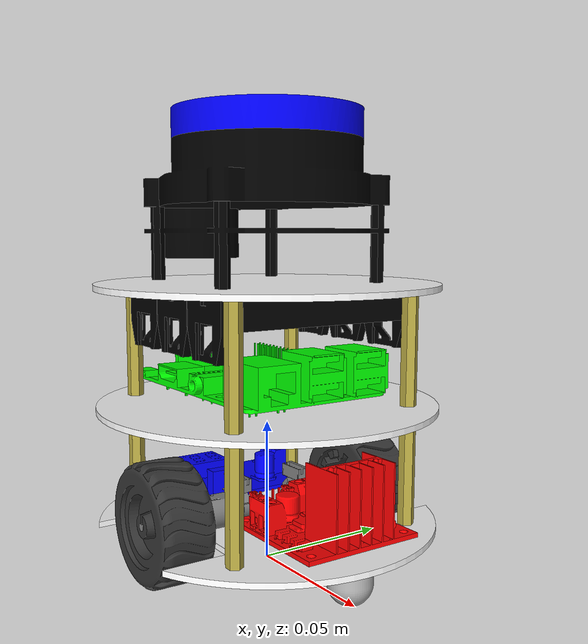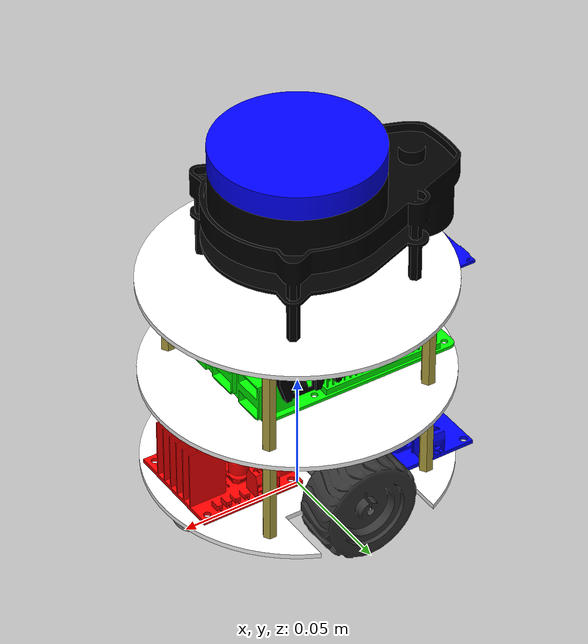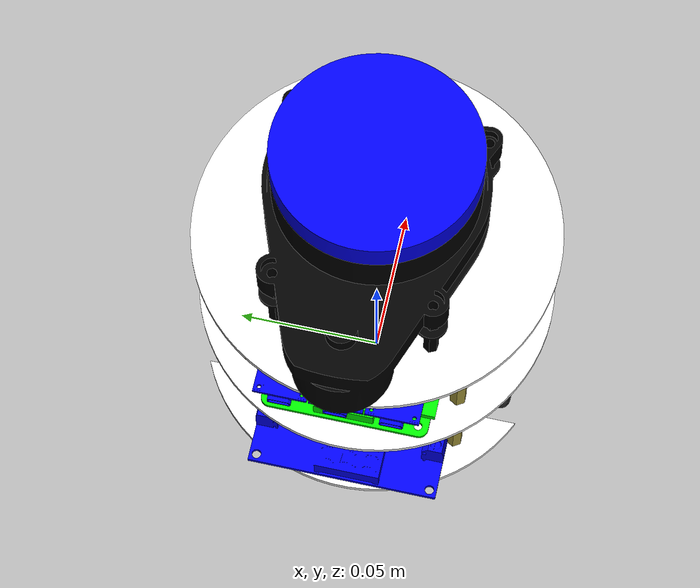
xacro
<?xml version="1.0" ?>

<robot name="auro" xmlns:xacro="http://www.ros.org/wiki/xacro">

<xacro:include filename="$(find auro_description)/urdf/materials.xacro" />
<xacro:include filename="$(find auro_description)/urdf/auro.trans" />
<xacro:include filename="$(find auro_description)/gazebo/auro_plugins.gazebo" />
<xacro:include filename="$(find auro_description)/gazebo/auro_materials.gazebo" />
<xacro:include filename="$(find auro_description)/gazebo/auro_physics.gazebo" />

<link name="base_link">
  <inertial>
    <origin rpy="0 0 0" xyz="-1.6741948695112564e-17 -8.370974347556282e-18 0.015"/>
    <mass value="0.020167897667239233"/>
    <inertia ixx="1.1e-05" ixy="-0.0" ixz="-0.0" iyy="2.3e-05" iyz="-0.0" izz="3.4e-05"/>
  </inertial>
  <visual>
    <origin rpy="0 0 0" xyz="0 0 0"/>
    <geometry>
      <mesh filename="package://auro_description/meshes/base_link.stl" scale="0.001 0.001 0.001"/>
    </geometry>
    <material name="white"/>
  </visual>
  <collision>
    <origin rpy="0 0 0" xyz="0 0 0"/>
    <geometry>
      <mesh filename="package://auro_description/meshes/base_link.stl" scale="0.001 0.001 0.001"/>
    </geometry>
  </collision>
</link>

<link name="stanoff_fl1">
  <inertial>
    <origin rpy="0 0 0" xyz="-6.938893903907228e-18 -6.938893903907228e-18 0.02000000000000001"/>
    <mass value="0.007352555678129874"/>
    <inertia ixx="1e-06" ixy="-0.0" ixz="-0.0" iyy="1e-06" iyz="-0.0" izz="0.0"/>
  </inertial>
  <visual>
    <origin rpy="0 0 0" xyz="-0.035 -0.035 -0.016"/>
    <geometry>
      <mesh filename="package://auro_description/meshes/stanoff_fl1.stl" scale="0.001 0.001 0.001"/>
    </geometry>
    <material name="brass"/>
  </visual>
  <collision>
    <origin rpy="0 0 0" xyz="-0.035 -0.035 -0.016"/>
    <geometry>
      <mesh filename="package://auro_description/meshes/stanoff_fl1.stl" scale="0.001 0.001 0.001"/>
    </geometry>
  </collision>
</link>

<link name="stanoff_fr1">
  <inertial>
    <origin rpy="0 0 0" xyz="-6.938893903907228e-18 0.0 0.02000000000000001"/>
    <mass value="0.007352555678129874"/>
    <inertia ixx="1e-06" ixy="0.0" ixz="-0.0" iyy="1e-06" iyz="0.0" izz="0.0"/>
  </inertial>
  <visual>
    <origin rpy="0 0 0" xyz="-0.035 0.035 -0.016"/>
    <geometry>
      <mesh filename="package://auro_description/meshes/stanoff_fr1.stl" scale="0.001 0.001 0.001"/>
    </geometry>
    <material name="brass"/>
  </visual>
  <collision>
    <origin rpy="0 0 0" xyz="-0.035 0.035 -0.016"/>
    <geometry>
      <mesh filename="package://auro_description/meshes/stanoff_fr1.stl" scale="0.001 0.001 0.001"/>
    </geometry>
  </collision>
</link>

<link name="stanoff_bl1">
  <inertial>
    <origin rpy="0 0 0" xyz="0.0 0.0 0.02000000000000001"/>
    <mass value="0.007352555678129874"/>
    <inertia ixx="1e-06" ixy="-0.0" ixz="0.0" iyy="1e-06" iyz="0.0" izz="0.0"/>
  </inertial>
  <visual>
    <origin rpy="0 0 0" xyz="0.035 -0.035 -0.016"/>
    <geometry>
      <mesh filename="package://auro_description/meshes/stanoff_bl1.stl" scale="0.001 0.001 0.001"/>
    </geometry>
    <material name="brass"/>
  </visual>
  <collision>
    <origin rpy="0 0 0" xyz="0.035 -0.035 -0.016"/>
    <geometry>
      <mesh filename="package://auro_description/meshes/stanoff_bl1.stl" scale="0.001 0.001 0.001"/>
    </geometry>
  </collision>
</link>

<link name="stanoff_br1">
  <inertial>
    <origin rpy="0 0 0" xyz="0.0 0.0 0.02000000000000001"/>
    <mass value="0.007352555678129874"/>
    <inertia ixx="1e-06" ixy="0.0" ixz="0.0" iyy="1e-06" iyz="-0.0" izz="0.0"/>
  </inertial>
  <visual>
    <origin rpy="0 0 0" xyz="0.035 0.035 -0.016"/>
    <geometry>
      <mesh filename="package://auro_description/meshes/stanoff_br1.stl" scale="0.001 0.001 0.001"/>
    </geometry>
    <material name="brass"/>
  </visual>
  <collision>
    <origin rpy="0 0 0" xyz="0.035 0.035 -0.016"/>
    <geometry>
      <mesh filename="package://auro_description/meshes/stanoff_br1.stl" scale="0.001 0.001 0.001"/>
    </geometry>
  </collision>
</link>

<link name="mid_plate">
  <inertial>
    <origin rpy="0 0 0" xyz="1.910935747315408e-48 -5.638036790056881e-49 0.0010000000000000078"/>
    <mass value="0.026871926921745795"/>
    <inertia ixx="2.4e-05" ixy="-0.0" ixz="-0.0" iyy="2.4e-05" iyz="-0.0" izz="4.8e-05"/>
  </inertial>
  <visual>
    <origin rpy="0 0 0" xyz="-0.0 0.0 -0.056"/>
    <geometry>
      <mesh filename="package://auro_description/meshes/mid_plate.stl" scale="0.001 0.001 0.001"/>
    </geometry>
    <material name="white"/>
  </visual>
  <collision>
    <origin rpy="0 0 0" xyz="-0.0 0.0 -0.056"/>
    <geometry>
      <mesh filename="package://auro_description/meshes/mid_plate.stl" scale="0.001 0.001 0.001"/>
    </geometry>
  </collision>
</link>

<link name="stanoff_fl2">
  <inertial>
    <origin rpy="0 0 0" xyz="-6.938893903907228e-18 0.0 0.02000000000000001"/>
    <mass value="0.007352555678129875"/>
    <inertia ixx="1e-06" ixy="0.0" ixz="-0.0" iyy="1e-06" iyz="0.0" izz="0.0"/>
  </inertial>
  <visual>
    <origin rpy="0 0 0" xyz="-0.035 -0.035 -0.058"/>
    <geometry>
      <mesh filename="package://auro_description/meshes/stanoff_fl2.stl" scale="0.001 0.001 0.001"/>
    </geometry>
    <material name="brass"/>
  </visual>
  <collision>
    <origin rpy="0 0 0" xyz="-0.035 -0.035 -0.058"/>
    <geometry>
      <mesh filename="package://auro_description/meshes/stanoff_fl2.stl" scale="0.001 0.001 0.001"/>
    </geometry>
  </collision>
</link>

<link name="stanoff_fr2">
  <inertial>
    <origin rpy="0 0 0" xyz="-6.938893903907228e-18 0.0 0.020000000000000025"/>
    <mass value="0.0073525556781298745"/>
    <inertia ixx="1e-06" ixy="0.0" ixz="-0.0" iyy="1e-06" iyz="0.0" izz="0.0"/>
  </inertial>
  <visual>
    <origin rpy="0 0 0" xyz="-0.035 0.035 -0.058"/>
    <geometry>
      <mesh filename="package://auro_description/meshes/stanoff_fr2.stl" scale="0.001 0.001 0.001"/>
    </geometry>
    <material name="brass"/>
  </visual>
  <collision>
    <origin rpy="0 0 0" xyz="-0.035 0.035 -0.058"/>
    <geometry>
      <mesh filename="package://auro_description/meshes/stanoff_fr2.stl" scale="0.001 0.001 0.001"/>
    </geometry>
  </collision>
</link>

<link name="stanoff_bl2">
  <inertial>
    <origin rpy="0 0 0" xyz="0.0 -6.938893903907228e-18 0.020000000000000025"/>
    <mass value="0.0073525556781298745"/>
    <inertia ixx="1e-06" ixy="0.0" ixz="-0.0" iyy="1e-06" iyz="0.0" izz="0.0"/>
  </inertial>
  <visual>
    <origin rpy="0 0 0" xyz="0.035 -0.035 -0.058"/>
    <geometry>
      <mesh filename="package://auro_description/meshes/stanoff_bl2.stl" scale="0.001 0.001 0.001"/>
    </geometry>
    <material name="brass"/>
  </visual>
  <collision>
    <origin rpy="0 0 0" xyz="0.035 -0.035 -0.058"/>
    <geometry>
      <mesh filename="package://auro_description/meshes/stanoff_bl2.stl" scale="0.001 0.001 0.001"/>
    </geometry>
  </collision>
</link>

<link name="stanoff_br2">
  <inertial>
    <origin rpy="0 0 0" xyz="6.938893903907228e-18 6.938893903907228e-18 0.02000000000000001"/>
    <mass value="0.007352555678129875"/>
    <inertia ixx="1e-06" ixy="-0.0" ixz="0.0" iyy="1e-06" iyz="0.0" izz="0.0"/>
  </inertial>
  <visual>
    <origin rpy="0 0 0" xyz="0.035 0.035 -0.058"/>
    <geometry>
      <mesh filename="package://auro_description/meshes/stanoff_br2.stl" scale="0.001 0.001 0.001"/>
    </geometry>
    <material name="brass"/>
  </visual>
  <collision>
    <origin rpy="0 0 0" xyz="0.035 0.035 -0.058"/>
    <geometry>
      <mesh filename="package://auro_description/meshes/stanoff_br2.stl" scale="0.001 0.001 0.001"/>
    </geometry>
  </collision>
</link>

<link name="top_plate">
  <inertial>
    <origin rpy="0 0 0" xyz="2.6901522656381965e-48 -7.937042083089784e-49 0.0010000000000000286"/>
    <mass value="0.026871926921745795"/>
    <inertia ixx="2.4e-05" ixy="-0.0" ixz="-0.0" iyy="2.4e-05" iyz="-0.0" izz="4.8e-05"/>
  </inertial>
  <visual>
    <origin rpy="0 0 0" xyz="-0.0 0.0 -0.098"/>
    <geometry>
      <mesh filename="package://auro_description/meshes/top_plate.stl" scale="0.001 0.001 0.001"/>
    </geometry>
    <material name="white"/>
  </visual>
  <collision>
    <origin rpy="0 0 0" xyz="-0.0 0.0 -0.098"/>
    <geometry>
      <mesh filename="package://auro_description/meshes/top_plate.stl" scale="0.001 0.001 0.001"/>
    </geometry>
  </collision>
</link>

<link name="raspberryPi">
  <inertial>
    <origin rpy="0 0 0" xyz="0.004465472519733238 -0.0012540083650862779 0.0088888306809154"/>
    <mass value="0.13472167579144453"/>
    <inertia ixx="4.1e-05" ixy="-0.0" ixz="-9e-06" iyy="8.3e-05" iyz="0.0" izz="0.000118"/>
  </inertial>
  <visual>
    <origin rpy="0 0 0" xyz="-0.0 0.0 -0.058"/>
    <geometry>
      <mesh filename="package://auro_description/meshes/raspberryPi.stl" scale="0.001 0.001 0.001"/>
    </geometry>
    <material name="green"/>
  </visual>
  <collision>
    <origin rpy="0 0 0" xyz="-0.0 0.0 -0.058"/>
    <geometry>
      <mesh filename="package://auro_description/meshes/raspberryPi.stl" scale="0.001 0.001 0.001"/>
    </geometry>
  </collision>
</link>

<link name="motorDriver_v1">
  <inertial>
    <origin rpy="0 0 0" xyz="0.03255280427741765 0.0001852058573212963 0.010310208560166262"/>
    <mass value="0.012660751912762648"/>
    <inertia ixx="2e-06" ixy="-0.0" ixz="-0.0" iyy="2e-06" iyz="-0.0" izz="3e-06"/>
  </inertial>
  <visual>
    <origin rpy="0 0 0" xyz="-0.0 0.0 -0.016"/>
    <geometry>
      <mesh filename="package://auro_description/meshes/motorDriver_v1.stl" scale="0.001 0.001 0.001"/>
    </geometry>
    <material name="red"/>
  </visual>
  <collision>
    <origin rpy="0 0 0" xyz="-0.0 0.0 -0.016"/>
    <geometry>
      <mesh filename="package://auro_description/meshes/motorDriver_v1.stl" scale="0.001 0.001 0.001"/>
    </geometry>
  </collision>
</link>

<link name="cellHolder1">
  <inertial>
    <origin rpy="0 0 0" xyz="-1.2445977469278579e-15 -1.5130352315099359e-05 -0.004525309745796305"/>
    <mass value="0.05093596003510445"/>
    <inertia ixx="3.3e-05" ixy="0.0" ixz="0.0" iyy="4e-06" iyz="0.0" izz="3.5e-05"/>
  </inertial>
  <visual>
    <origin rpy="0 0 0" xyz="-0.0 0.0 -0.098"/>
    <geometry>
      <mesh filename="package://auro_description/meshes/cellHolder1.stl" scale="0.001 0.001 0.001"/>
    </geometry>
    <material name="black"/>
  </visual>
  <collision>
    <origin rpy="0 0 0" xyz="-0.0 0.0 -0.098"/>
    <geometry>
      <mesh filename="package://auro_description/meshes/cellHolder1.stl" scale="0.001 0.001 0.001"/>
    </geometry>
  </collision>
</link>

<link name="cellHolder2">
  <inertial>
    <origin rpy="0 0 0" xyz="-0.02150000000000125 -1.5130352315099359e-05 -0.004525309745796305"/>
    <mass value="0.05093596003510445"/>
    <inertia ixx="3.3e-05" ixy="0.0" ixz="0.0" iyy="4e-06" iyz="0.0" izz="3.5e-05"/>
  </inertial>
  <visual>
    <origin rpy="0 0 0" xyz="-0.0 0.0 -0.098"/>
    <geometry>
      <mesh filename="package://auro_description/meshes/cellHolder2.stl" scale="0.001 0.001 0.001"/>
    </geometry>
    <material name="black"/>
  </visual>
  <collision>
    <origin rpy="0 0 0" xyz="-0.0 0.0 -0.098"/>
    <geometry>
      <mesh filename="package://auro_description/meshes/cellHolder2.stl" scale="0.001 0.001 0.001"/>
    </geometry>
  </collision>
</link>

<link name="cellHolder3">
  <inertial>
    <origin rpy="0 0 0" xyz="0.021499999999998763 -1.5130352315099359e-05 -0.004525309745796305"/>
    <mass value="0.05093596003510445"/>
    <inertia ixx="3.3e-05" ixy="0.0" ixz="0.0" iyy="4e-06" iyz="0.0" izz="3.5e-05"/>
  </inertial>
  <visual>
    <origin rpy="0 0 0" xyz="-0.0 0.0 -0.098"/>
    <geometry>
      <mesh filename="package://auro_description/meshes/cellHolder3.stl" scale="0.001 0.001 0.001"/>
    </geometry>
    <material name="black"/>
  </visual>
  <collision>
    <origin rpy="0 0 0" xyz="-0.0 0.0 -0.098"/>
    <geometry>
      <mesh filename="package://auro_description/meshes/cellHolder3.stl" scale="0.001 0.001 0.001"/>
    </geometry>
  </collision>
</link>

<link name="charger3">
  <inertial>
    <origin rpy="0 0 0" xyz="-0.048767039570360333 -9.076614876029884e-05 -0.0009288887085712461"/>
    <mass value="0.005355004774781881"/>
    <inertia ixx="0.0" ixy="-0.0" ixz="-0.0" iyy="0.0" iyz="-0.0" izz="0.0"/>
  </inertial>
  <visual>
    <origin rpy="0 0 0" xyz="-0.0 0.0 -0.098"/>
    <geometry>
      <mesh filename="package://auro_description/meshes/charger3.stl" scale="0.001 0.001 0.001"/>
    </geometry>
    <material name="blue"/>
  </visual>
  <collision>
    <origin rpy="0 0 0" xyz="-0.0 0.0 -0.098"/>
    <geometry>
      <mesh filename="package://auro_description/meshes/charger3.stl" scale="0.001 0.001 0.001"/>
    </geometry>
  </collision>
</link>

<link name="charger1">
  <inertial>
    <origin rpy="0 0 0" xyz="-0.048767039570360354 -0.0180907661487603 -0.0009288887085712461"/>
    <mass value="0.005355004774781881"/>
    <inertia ixx="0.0" ixy="-0.0" ixz="-0.0" iyy="0.0" iyz="-0.0" izz="0.0"/>
  </inertial>
  <visual>
    <origin rpy="0 0 0" xyz="-0.0 0.0 -0.098"/>
    <geometry>
      <mesh filename="package://auro_description/meshes/charger1.stl" scale="0.001 0.001 0.001"/>
    </geometry>
    <material name="blue"/>
  </visual>
  <collision>
    <origin rpy="0 0 0" xyz="-0.0 0.0 -0.098"/>
    <geometry>
      <mesh filename="package://auro_description/meshes/charger1.stl" scale="0.001 0.001 0.001"/>
    </geometry>
  </collision>
</link>

<link name="charger2">
  <inertial>
    <origin rpy="0 0 0" xyz="-0.048767039570360354 0.017909233851239704 -0.0009288887085712322"/>
    <mass value="0.005355004774781881"/>
    <inertia ixx="0.0" ixy="-0.0" ixz="-0.0" iyy="0.0" iyz="-0.0" izz="0.0"/>
  </inertial>
  <visual>
    <origin rpy="0 0 0" xyz="-0.0 0.0 -0.098"/>
    <geometry>
      <mesh filename="package://auro_description/meshes/charger2.stl" scale="0.001 0.001 0.001"/>
    </geometry>
    <material name="blue"/>
  </visual>
  <collision>
    <origin rpy="0 0 0" xyz="-0.0 0.0 -0.098"/>
    <geometry>
      <mesh filename="package://auro_description/meshes/charger2.stl" scale="0.001 0.001 0.001"/>
    </geometry>
  </collision>
</link>

<link name="motorn20_right">
  <inertial>
    <origin rpy="0 0 0" xyz="2.6844399149930707e-05 0.006836854807477151 0.005517296211487617"/>
    <mass value="0.020522858123399677"/>
    <inertia ixx="2e-06" ixy="0.0" ixz="-0.0" iyy="0.0" iyz="-0.0" izz="2e-06"/>
  </inertial>
  <visual>
    <origin rpy="0 0 0" xyz="-0.0 0.03 -0.016"/>
    <geometry>
      <mesh filename="package://auro_description/meshes/motorn20_right.stl" scale="0.001 0.001 0.001"/>
    </geometry>
    <material name="grey"/>
  </visual>
  <collision>
    <origin rpy="0 0 0" xyz="-0.0 0.03 -0.016"/>
    <geometry>
      <mesh filename="package://auro_description/meshes/motorn20_right.stl" scale="0.001 0.001 0.001"/>
    </geometry>
  </collision>
</link>

<link name="motorn20_left">
  <inertial>
    <origin rpy="0 0 0" xyz="-2.684439914996626e-05 -0.006836854807477151 0.00551729621148761"/>
    <mass value="0.020522858123399677"/>
    <inertia ixx="2e-06" ixy="0.0" ixz="0.0" iyy="0.0" iyz="0.0" izz="2e-06"/>
  </inertial>
  <visual>
    <origin rpy="0 0 0" xyz="-0.0 -0.03 -0.016"/>
    <geometry>
      <mesh filename="package://auro_description/meshes/motorn20_left.stl" scale="0.001 0.001 0.001"/>
    </geometry>
    <material name="grey"/>
  </visual>
  <collision>
    <origin rpy="0 0 0" xyz="-0.0 -0.03 -0.016"/>
    <geometry>
      <mesh filename="package://auro_description/meshes/motorn20_left.stl" scale="0.001 0.001 0.001"/>
    </geometry>
  </collision>
</link>

<link name="caster_forward">
  <inertial>
    <origin rpy="0 0 0" xyz="0.0 1.0926221127947672e-18 -0.005885869565217389"/>
    <mass value="0.005486987919035421"/>
    <inertia ixx="0.0" ixy="-0.0" ixz="0.0" iyy="0.0" iyz="0.0" izz="0.0"/>
  </inertial>
  <visual>
    <origin rpy="0 0 0" xyz="-0.0475 -0.0 -0.014"/>
    <geometry>
      <mesh filename="package://auro_description/meshes/caster_forward.stl" scale="0.001 0.001 0.001"/>
    </geometry>
    <material name="silver"/>
  </visual>
  <collision>
    <origin rpy="0 0 0" xyz="-0.0475 -0.0 -0.014"/>
    <geometry>
      <mesh filename="package://auro_description/meshes/caster_forward.stl" scale="0.001 0.001 0.001"/>
    </geometry>
  </collision>
</link>

<link name="caster_backward">
  <inertial>
    <origin rpy="0 0 0" xyz="2.0816681711721685e-17 -3.2778663383842998e-18 -0.005885869565217394"/>
    <mass value="0.005486987919035424"/>
    <inertia ixx="0.0" ixy="-0.0" ixz="0.0" iyy="0.0" iyz="-0.0" izz="0.0"/>
  </inertial>
  <visual>
    <origin rpy="0 0 0" xyz="0.0475 -0.0 -0.014"/>
    <geometry>
      <mesh filename="package://auro_description/meshes/caster_backward.stl" scale="0.001 0.001 0.001"/>
    </geometry>
    <material name="silver"/>
  </visual>
  <collision>
    <origin rpy="0 0 0" xyz="0.0475 -0.0 -0.014"/>
    <geometry>
      <mesh filename="package://auro_description/meshes/caster_backward.stl" scale="0.001 0.001 0.001"/>
    </geometry>
  </collision>
</link>

<link name="lidar_top">
  <inertial>
    <origin rpy="0 0 0" xyz="-7.689518322433719e-111 -8.409160371375548e-18 0.005000000000000032"/>
    <mass value="0.2653183066743863"/>
    <inertia ixx="7.4e-05" ixy="0.0" ixz="-0.0" iyy="7.4e-05" iyz="0.0" izz="0.000143"/>
  </inertial>
  <visual>
    <origin rpy="0 0 0" xyz="-0.0 -0.0 -0.1485"/>
    <geometry>
      <mesh filename="package://auro_description/meshes/lidar_top.stl" scale="0.001 0.001 0.001"/>
    </geometry>
    <material name="blue"/>
  </visual>
  <collision>
    <origin rpy="0 0 0" xyz="-0.0 -0.0 -0.1485"/>
    <geometry>
      <mesh filename="package://auro_description/meshes/lidar_top.stl" scale="0.001 0.001 0.001"/>
    </geometry>
  </collision>
</link>

<link name="ydlidar_x4_v1">
  <inertial>
    <origin rpy="0 0 0" xyz="-0.010777138184320795 3.5244787732529375e-17 -0.0006783136942502266"/>
    <mass value="0.8862433475570364"/>
    <inertia ixx="0.000324" ixy="-0.0" ixz="-0.000101" iyy="0.000672" iyz="0.0" izz="0.00082"/>
  </inertial>
  <visual>
    <origin rpy="0 0 0" xyz="-0.0 0.0 -0.133"/>
    <geometry>
      <mesh filename="package://auro_description/meshes/ydlidar_x4_v1.stl" scale="0.001 0.001 0.001"/>
    </geometry>
    <material name="black"/>
  </visual>
  <collision>
    <origin rpy="0 0 0" xyz="-0.0 0.0 -0.133"/>
    <geometry>
      <mesh filename="package://auro_description/meshes/ydlidar_x4_v1.stl" scale="0.001 0.001 0.001"/>
    </geometry>
  </collision>
</link>

<link name="wheel_right">
  <inertial>
    <origin rpy="0 0 0" xyz="7.404860252371396e-10 0.003983748519609059 -6.14458227954362e-06"/>
    <mass value="0.02002160135498839"/>
    <inertia ixx="3e-06" ixy="0.0" ixz="-0.0" iyy="5e-06" iyz="-0.0" izz="3e-06"/>
  </inertial>
  <visual>
    <origin rpy="0 0 0" xyz="-0.0 0.0461 -0.021"/>
    <geometry>
      <mesh filename="package://auro_description/meshes/wheel_right.stl" scale="0.001 0.001 0.001"/>
    </geometry>
    <material name="darkgrey"/>
  </visual>
  <collision>
    <origin rpy="0 0 0" xyz="-0.0 0.0461 -0.021"/>
    <geometry>
      <mesh filename="package://auro_description/meshes/wheel_right.stl" scale="0.001 0.001 0.001"/>
    </geometry>
  </collision>
</link>

<link name="wheel_left">
  <inertial>
    <origin rpy="0 0 0" xyz="-7.40486060765524e-10 -0.003983748519609059 -6.144582279567906e-06"/>
    <mass value="0.02002160135498839"/>
    <inertia ixx="3e-06" ixy="0.0" ixz="0.0" iyy="5e-06" iyz="0.0" izz="3e-06"/>
  </inertial>
  <visual>
    <origin rpy="0 0 0" xyz="0.0 -0.0461 -0.021"/>
    <geometry>
      <mesh filename="package://auro_description/meshes/wheel_left.stl" scale="0.001 0.001 0.001"/>
    </geometry>
    <material name="darkgrey"/>
  </visual>
  <collision>
    <origin rpy="0 0 0" xyz="0.0 -0.0461 -0.021"/>
    <geometry>
      <mesh filename="package://auro_description/meshes/wheel_left.stl" scale="0.001 0.001 0.001"/>
    </geometry>
  </collision>
</link>

<link name="buckconvertor">
  <inertial>
    <origin rpy="0 0 0" xyz="-0.0007659124673479456 -0.0005695725705486421 0.0037439565118506796"/>
    <mass value="0.06445278558183198"/>
    <inertia ixx="2.2e-05" ixy="-0.0" ixz="-0.0" iyy="7e-06" iyz="0.0" izz="2.7e-05"/>
  </inertial>
  <visual>
    <origin rpy="0 0 0" xyz="0.04 -0.0 -0.016"/>
    <geometry>
      <mesh filename="package://auro_description/meshes/buckconvertor.stl" scale="0.001 0.001 0.001"/>
    </geometry>
    <material name="blue"/>
  </visual>
  <collision>
    <origin rpy="0 0 0" xyz="0.04 -0.0 -0.016"/>
    <geometry>
      <mesh filename="package://auro_description/meshes/buckconvertor.stl" scale="0.001 0.001 0.001"/>
    </geometry>
  </collision>
</link>

<link name="mpu">
  <inertial>
    <origin rpy="0 0 0" xyz="6.318495909845012e-06 8.182177681427705e-05 -0.0008441458401822616"/>
    <mass value="0.0005786974233911085"/>
    <inertia ixx="0.0" ixy="-0.0" ixz="-0.0" iyy="0.0" iyz="0.0" izz="0.0"/>
  </inertial>
  <visual>
    <origin rpy="0 0 0" xyz="-0.0 -0.0 -0.055"/>
    <geometry>
      <mesh filename="package://auro_description/meshes/mpu.stl" scale="0.001 0.001 0.001"/>
    </geometry>
    <material name="blue"/>
  </visual>
  <collision>
    <origin rpy="0 0 0" xyz="-0.0 -0.0 -0.055"/>
    <geometry>
      <mesh filename="package://auro_description/meshes/mpu.stl" scale="0.001 0.001 0.001"/>
    </geometry>
  </collision>
</link>

<joint name="Rigid1" type="fixed">
  <origin rpy="0 0 0" xyz="0.035 0.035 0.016"/>
  <parent link="base_link"/>
  <child link="stanoff_fl1"/>
</joint>

<joint name="Rigid2" type="fixed">
  <origin rpy="0 0 0" xyz="0.035 -0.035 0.016"/>
  <parent link="base_link"/>
  <child link="stanoff_fr1"/>
</joint>

<joint name="Rigid3" type="fixed">
  <origin rpy="0 0 0" xyz="-0.035 0.035 0.016"/>
  <parent link="base_link"/>
  <child link="stanoff_bl1"/>
</joint>

<joint name="Rigid4" type="fixed">
  <origin rpy="0 0 0" xyz="-0.035 -0.035 0.016"/>
  <parent link="base_link"/>
  <child link="stanoff_br1"/>
</joint>

<joint name="Rigid5" type="fixed">
  <origin rpy="0 0 0" xyz="-0.035 -0.035 0.04"/>
  <parent link="stanoff_fl1"/>
  <child link="mid_plate"/>
</joint>

<joint name="Rigid6" type="fixed">
  <origin rpy="0 0 0" xyz="0.035 0.035 0.002"/>
  <parent link="mid_plate"/>
  <child link="stanoff_fl2"/>
</joint>

<joint name="Rigid7" type="fixed">
  <origin rpy="0 0 0" xyz="0.035 -0.035 0.002"/>
  <parent link="mid_plate"/>
  <child link="stanoff_fr2"/>
</joint>

<joint name="Rigid8" type="fixed">
  <origin rpy="0 0 0" xyz="-0.035 0.035 0.002"/>
  <parent link="mid_plate"/>
  <child link="stanoff_bl2"/>
</joint>

<joint name="Rigid9" type="fixed">
  <origin rpy="0 0 0" xyz="-0.035 -0.035 0.002"/>
  <parent link="mid_plate"/>
  <child link="stanoff_br2"/>
</joint>

<joint name="Rigid10" type="fixed">
  <origin rpy="0 0 0" xyz="-0.035 -0.035 0.04"/>
  <parent link="stanoff_fl2"/>
  <child link="top_plate"/>
</joint>

<joint name="Rigid11" type="fixed">
  <origin rpy="0 0 0" xyz="0.0 0.0 0.002"/>
  <parent link="mid_plate"/>
  <child link="raspberryPi"/>
</joint>

<joint name="Rigid12" type="fixed">
  <origin rpy="0 0 0" xyz="0.0 0.0 0.016"/>
  <parent link="base_link"/>
  <child link="motorDriver_v1"/>
</joint>

<joint name="Rigid14" type="fixed">
  <origin rpy="0 0 0" xyz="0.0 0.0 0.0"/>
  <parent link="top_plate"/>
  <child link="cellHolder1"/>
</joint>

<joint name="Rigid15" type="fixed">
  <origin rpy="0 0 0" xyz="0.0 0.0 0.0"/>
  <parent link="top_plate"/>
  <child link="cellHolder2"/>
</joint>

<joint name="Rigid16" type="fixed">
  <origin rpy="0 0 0" xyz="0.0 0.0 0.0"/>
  <parent link="top_plate"/>
  <child link="cellHolder3"/>
</joint>

<joint name="Rigid17" type="fixed">
  <origin rpy="0 0 0" xyz="0.0 0.0 0.0"/>
  <parent link="top_plate"/>
  <child link="charger3"/>
</joint>

<joint name="Rigid18" type="fixed">
  <origin rpy="0 0 0" xyz="0.0 0.0 0.0"/>
  <parent link="top_plate"/>
  <child link="charger1"/>
</joint>

<joint name="Rigid19" type="fixed">
  <origin rpy="0 0 0" xyz="0.0 0.0 0.0"/>
  <parent link="top_plate"/>
  <child link="charger2"/>
</joint>

<joint name="Rigid22" type="fixed">
  <origin rpy="0 0 0" xyz="0.0 -0.03 0.016"/>
  <parent link="base_link"/>
  <child link="motorn20_right"/>
</joint>

<joint name="Rigid23" type="fixed">
  <origin rpy="0 0 0" xyz="0.0 0.03 0.016"/>
  <parent link="base_link"/>
  <child link="motorn20_left"/>
</joint>

<joint name="Rigid26" type="fixed">
  <origin rpy="0 0 0" xyz="0.0475 0.0 0.014"/>
  <parent link="base_link"/>
  <child link="caster_forward"/>
</joint>

<joint name="Rigid30" type="fixed">
  <origin rpy="0 0 0" xyz="-0.0475 0.0 0.014"/>
  <parent link="base_link"/>
  <child link="caster_backward"/>
</joint>

<joint name="Rigid31" type="fixed">
  <origin rpy="0 0 0" xyz="0.0 0.0 0.0155"/>
  <parent link="ydlidar_x4_v1"/>
  <child link="lidar_top"/>
</joint>

<joint name="Rigid32" type="fixed">
  <origin rpy="0 0 0" xyz="0.0 0.0 0.035"/>
  <parent link="top_plate"/>
  <child link="ydlidar_x4_v1"/>
</joint>

<joint name="motor_right" type="continuous">
  <origin rpy="0 0 0" xyz="0.0 -0.0161 0.005"/>
  <parent link="motorn20_right"/>
  <child link="wheel_right"/>
  <axis xyz="0.0 1.0 0.0"/>
</joint>

<joint name="motor_left" type="continuous">
  <origin rpy="0 0 0" xyz="-0.0 0.0161 0.005"/>
  <parent link="motorn20_left"/>
  <child link="wheel_left"/>
  <axis xyz="-0.0 1.0 -0.0"/>
</joint>

<joint name="Rigid35" type="fixed">
  <origin rpy="0 0 0" xyz="-0.04 0.0 0.016"/>
  <parent link="base_link"/>
  <child link="buckconvertor"/>
</joint>

<joint name="Rigid36" type="fixed">
  <origin rpy="0 0 0" xyz="0.0 0.0 -0.001"/>
  <parent link="mid_plate"/>
  <child link="mpu"/>
</joint>

</robot>

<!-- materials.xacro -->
<robot name="auro" xmlns:xacro="http://www.ros.org/wiki/xacro" >

<material name="silver">
  <color rgba="0.700 0.700 0.700 1.000"/>
</material>

<material name="white">
  <color rgba="1 1 1 1.000"/>
</material>

<material name="green">
  <color rgba="0 1 0 1.000"/>
</material>

<material name="brass">
  <color rgba="0.71 0.651 0.259 1.000"/>
</material>

<material name="red">
  <color rgba="1 0 0 1.000"/>
</material>

<material name="blue">
  <color rgba="0 0 1 1.000"/>
</material>

<material name="black">
  <color rgba="0 0 0 1.000"/>
</material>

<material name="darkgrey">
  <color rgba="0.2 0.2 0.2 1.000"/>
</material>

<material name="grey">
  <color rgba="0.5 0.5 0.5 1.000"/>
</material>

</robot>

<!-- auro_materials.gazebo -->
<robot name="auro" xmlns:xacro="http://www.ros.org/wiki/xacro" >

<xacro:property name="body_color" value="Gazebo/White" />
<xacro:property name="green" value="Gazebo/Green" />
<xacro:property name="brass" value="Gazebo/Gold" />
<xacro:property name="red" value="Gazebo/Red" />
<xacro:property name="blue" value="Gazebo/Blue" />
<xacro:property name="black" value="Gazebo/Black" />
<xacro:property name="darkgrey" value="Gazebo/DarkGrey" />
<xacro:property name="silver" value="Gazebo/Silver" />
<xacro:property name="grey" value="Gazebo/Grey" />

<gazebo reference="base_link">
  <material>${body_color}</material>
</gazebo>

<gazebo reference="stanoff_fl1">
  <material>${brass}</material>
</gazebo>

<gazebo reference="stanoff_fr1">
  <material>${brass}</material>
</gazebo>

<gazebo reference="stanoff_bl1">
  <material>${brass}</material>
</gazebo>

<gazebo reference="stanoff_br1">
  <material>${brass}</material>
</gazebo>

<gazebo reference="mid_plate">
  <material>${body_color}</material>
</gazebo>

<gazebo reference="stanoff_fl2">
  <material>${brass}</material>
</gazebo>

<gazebo reference="stanoff_fr2">
  <material>${brass}</material>
</gazebo>

<gazebo reference="stanoff_bl2">
  <material>${brass}</material>
</gazebo>

<gazebo reference="stanoff_br2">
  <material>${brass}</material>
</gazebo>

<gazebo reference="top_plate">
  <material>${body_color}</material>
</gazebo>

<gazebo reference="raspberryPi">
  <material>${green}</material>
</gazebo>

<gazebo reference="motorDriver_v1">
  <material>${red}</material>
</gazebo>

<gazebo reference="cellHolder1">
  <material>${black}</material>
</gazebo>

<gazebo reference="cellHolder2">
  <material>${black}</material>
</gazebo>

<gazebo reference="cellHolder3">
  <material>${black}</material>
</gazebo>

<gazebo reference="charger3">
  <material>${blue}</material>
</gazebo>

<gazebo reference="charger1">
  <material>${blue}</material>
</gazebo>

<gazebo reference="charger2">
  <material>${blue}</material>
</gazebo>

<gazebo reference="motorn20_right">
  <material>${grey}</material>
</gazebo>

<gazebo reference="motorn20_left">
  <material>${grey}</material>
</gazebo>

<gazebo reference="caster_forward">
  <material>${silver}</material>
</gazebo>

<gazebo reference="caster_backward">
  <material>${silver}</material>
</gazebo>

<gazebo reference="lidar_top">
  <material>${blue}</material>
</gazebo>

<gazebo reference="ydlidar_x4_v1">
  <material>${black}</material>
</gazebo>

<gazebo reference="wheel_right">
  <material>${darkgrey}</material>
</gazebo>

<gazebo reference="wheel_left">
  <material>${darkgrey}</material>
</gazebo>

<gazebo reference="buckconvertor">
  <material>${blue}</material>
</gazebo>

<gazebo reference="mpu">
  <material>${blue}</material>
</gazebo>

</robot>
